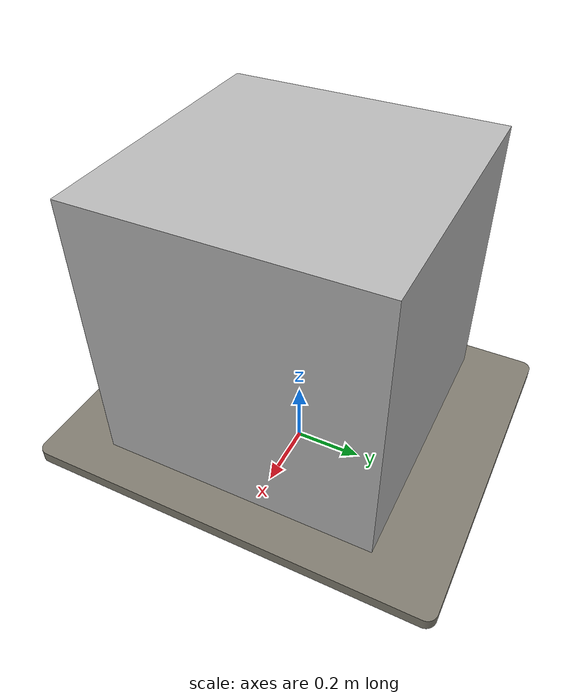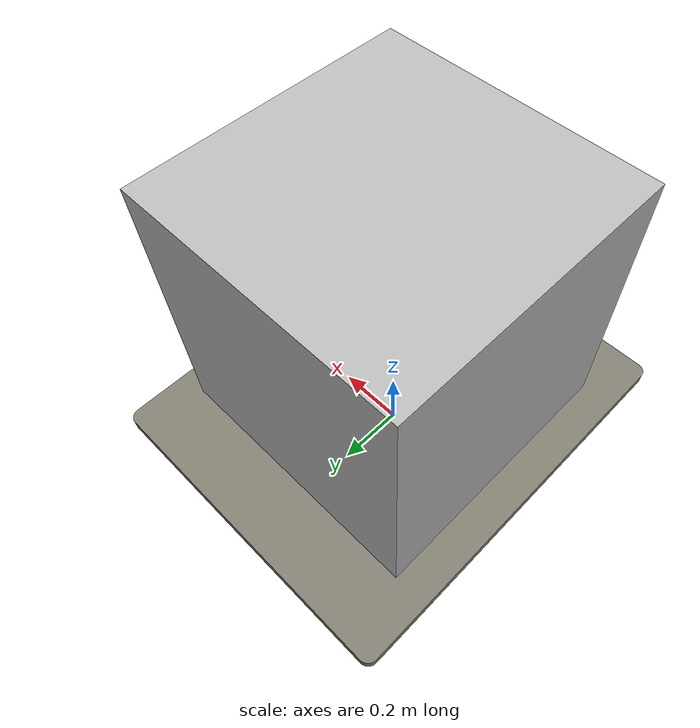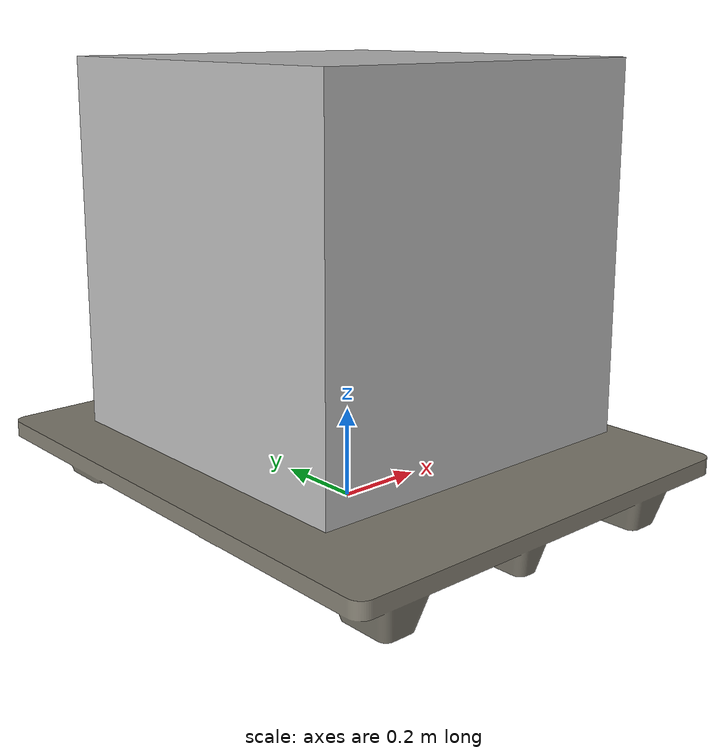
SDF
<?xml version="1.0" ?>
<sdf version="1.6">
  <model name="presswood_pallet">
    <link name="link">
    <pose>0 0.0 0.0 0 0 1.57</pose>
    <inertial>
    <pose>0 0.0 0.08 0 0 0</pose>
	    <mass>0.002</mass>
	    <inertia>
	      <ixx>0.0002434</ixx>
	      <iyy>0.0001101</iyy>
	      <izz>0.0003466</izz>
        <ixy>0</ixy>
	      <ixz>0</ixz>
	      <iyz>0</iyz>
	    </inertia>
	  </inertial>

      <collision name="collision">
      <pose>0.0 0.0 0.135 0 0 0</pose>
        <geometry>
          <mesh>
            <scale>1 1 1</scale>
            <uri>model://presswood_pallet/meshes/presswood_pallet.dae</uri>
          </mesh>
        </geometry>

        <surface>
            <friction>
              <ode>
                <mu>1.0</mu>
                <mu2>1.0</mu2>
                <fdir1>0.000000 0.000000 0.000000</fdir1>
                <slip1>0.000000</slip1>
                <slip2>0.000000</slip2>
              </ode>
            </friction>
            <bounce>
              <restitution_coefficient>0.0</restitution_coefficient>
              <threshold>100000.0</threshold>
            </bounce>
            <contact>
              <ode>
                <soft_cfm>0.000000</soft_cfm>
                <soft_erp>0.200000</soft_erp>
                <kp>3000000000.000000</kp>
                <kd>1.000000</kd>
                <max_vel>0.010000</max_vel>
                <min_depth>0.00000</min_depth>
              </ode>
            </contact>
        </surface>

      </collision>

      <visual name="visual">
        <pose>0.0 0.0 0.135 0 0 0</pose>
        <geometry>
          <mesh>
            <scale>1 1 1</scale>
            <uri>model://presswood_pallet/meshes/presswood_pallet.dae</uri>
          </mesh>
        </geometry>
      </visual>

      <collision name="box">
        <pose>0.0 0.0 0.56 0 0 0</pose>
        <geometry>
          <box>
            <size>0.8 0.8 0.8</size>
          </box>
        </geometry>
      </collision>
      <visual name="box">
        <pose>0.0 0.0 0.56 0 0 0</pose>
        <geometry>
          <box>
            <size>0.8 0.8 0.8</size>
          </box>
        </geometry>

      </visual>

    </link>
  </model>
</sdf>
